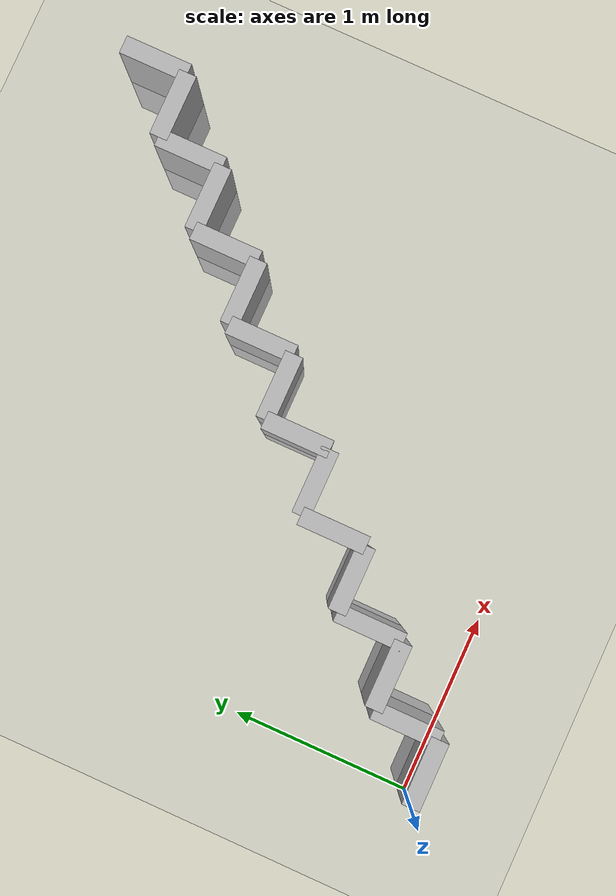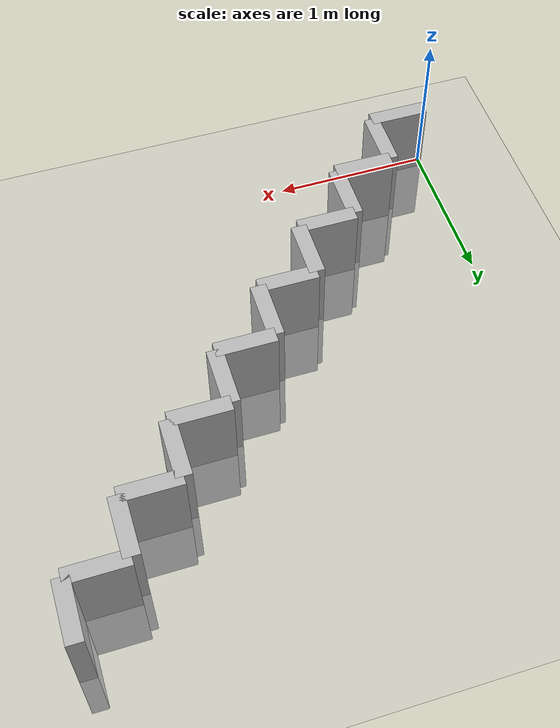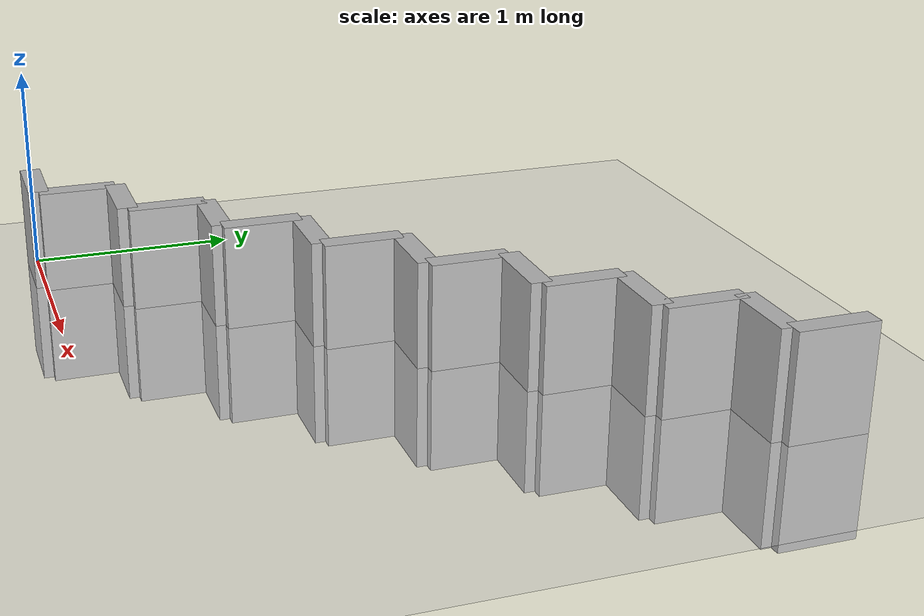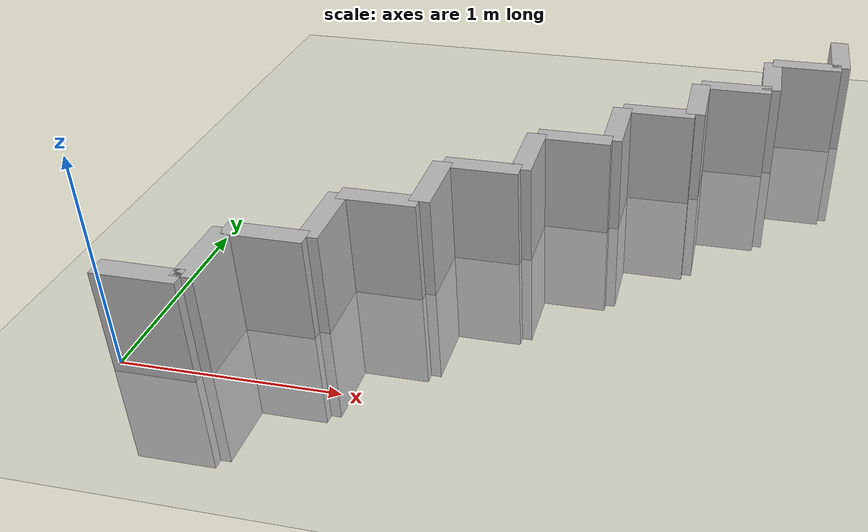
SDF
<?xml version="1.0" ?>
<sdf version="1.6">
  <world name="default">
    <include>
      <uri>model://ground_plane</uri>
    </include>
    <include>
      <uri>model://sun</uri>
    </include>

    <model name="wall_0">
      <static>true</static>
      <link name="link">
        <pose>0.1875 0 0 0 0 0</pose>
        <collision name="collision">
          <geometry>
            <box>
              <size>0.375 0.1 1.0</size>
            </box>
          </geometry>
        </collision>
        <visual name="visual">
          <geometry>
            <box>
              <size>0.375 0.1 1.0</size>
            </box>
          </geometry>
        </visual>
      </link>
    </model>

    <model name="wall_1">
      <static>true</static>
      <link name="link">
        <pose>0.375 0.1875 0 0 0 1.57</pose>
        <collision name="collision">
          <geometry>
            <box>
              <size>0.375 0.1 1.0</size>
            </box>
          </geometry>
        </collision>
        <visual name="visual">
          <geometry>
            <box>
              <size>0.375 0.1 1.0</size>
            </box>
          </geometry>
        </visual>
      </link>
    </model>

    <model name="wall_2">
      <static>true</static>
      <link name="link">
        <pose>0.5625 0.375 0 0 0 0</pose>
        <collision name="collision">
          <geometry>
            <box>
              <size>0.375 0.1 1.0</size>
            </box>
          </geometry>
        </collision>
        <visual name="visual">
          <geometry>
            <box>
              <size>0.375 0.1 1.0</size>
            </box>
          </geometry>
        </visual>
      </link>
    </model>

    <model name="wall_3">
      <static>true</static>
      <link name="link">
        <pose>0.75 0.5625 0 0 0 1.57</pose>
        <collision name="collision">
          <geometry>
            <box>
              <size>0.375 0.1 1.0</size>
            </box>
          </geometry>
        </collision>
        <visual name="visual">
          <geometry>
            <box>
              <size>0.375 0.1 1.0</size>
            </box>
          </geometry>
        </visual>
      </link>
    </model>

    <model name="wall_4">
      <static>true</static>
      <link name="link">
        <pose>0.9375 0.75 0 0 0 0</pose>
        <collision name="collision">
          <geometry>
            <box>
              <size>0.375 0.1 1.0</size>
            </box>
          </geometry>
        </collision>
        <visual name="visual">
          <geometry>
            <box>
              <size>0.375 0.1 1.0</size>
            </box>
          </geometry>
        </visual>
      </link>
    </model>

    <model name="wall_5">
      <static>true</static>
      <link name="link">
        <pose>1.125 0.9375 0 0 0 1.57</pose>
        <collision name="collision">
          <geometry>
            <box>
              <size>0.375 0.1 1.0</size>
            </box>
          </geometry>
        </collision>
        <visual name="visual">
          <geometry>
            <box>
              <size>0.375 0.1 1.0</size>
            </box>
          </geometry>
        </visual>
      </link>
    </model>

    <model name="wall_6">
      <static>true</static>
      <link name="link">
        <pose>1.3125 1.125 0 0 0 0</pose>
        <collision name="collision">
          <geometry>
            <box>
              <size>0.375 0.1 1.0</size>
            </box>
          </geometry>
        </collision>
        <visual name="visual">
          <geometry>
            <box>
              <size>0.375 0.1 1.0</size>
            </box>
          </geometry>
        </visual>
      </link>
    </model>

    <model name="wall_7">
      <static>true</static>
      <link name="link">
        <pose>1.5 1.3125 0 0 0 1.57</pose>
        <collision name="collision">
          <geometry>
            <box>
              <size>0.375 0.1 1.0</size>
            </box>
          </geometry>
        </collision>
        <visual name="visual">
          <geometry>
            <box>
              <size>0.375 0.1 1.0</size>
            </box>
          </geometry>
        </visual>
      </link>
    </model>

    <model name="wall_8">
      <static>true</static>
      <link name="link">
        <pose>1.6875 1.5 0 0 0 0</pose>
        <collision name="collision">
          <geometry>
            <box>
              <size>0.375 0.1 1.0</size>
            </box>
          </geometry>
        </collision>
        <visual name="visual">
          <geometry>
            <box>
              <size>0.375 0.1 1.0</size>
            </box>
          </geometry>
        </visual>
      </link>
    </model>

    <model name="wall_9">
      <static>true</static>
      <link name="link">
        <pose>1.875 1.6875 0 0 0 1.57</pose>
        <collision name="collision">
          <geometry>
            <box>
              <size>0.375 0.1 1.0</size>
            </box>
          </geometry>
        </collision>
        <visual name="visual">
          <geometry>
            <box>
              <size>0.375 0.1 1.0</size>
            </box>
          </geometry>
        </visual>
      </link>
    </model>

    <model name="wall_10">
      <static>true</static>
      <link name="link">
        <pose>2.0625 1.875 0 0 0 0</pose>
        <collision name="collision">
          <geometry>
            <box>
              <size>0.375 0.1 1.0</size>
            </box>
          </geometry>
        </collision>
        <visual name="visual">
          <geometry>
            <box>
              <size>0.375 0.1 1.0</size>
            </box>
          </geometry>
        </visual>
      </link>
    </model>

    <model name="wall_11">
      <static>true</static>
      <link name="link">
        <pose>2.25 2.0625 0 0 0 1.57</pose>
        <collision name="collision">
          <geometry>
            <box>
              <size>0.375 0.1 1.0</size>
            </box>
          </geometry>
        </collision>
        <visual name="visual">
          <geometry>
            <box>
              <size>0.375 0.1 1.0</size>
            </box>
          </geometry>
        </visual>
      </link>
    </model>

    <model name="wall_12">
      <static>true</static>
      <link name="link">
        <pose>2.4375 2.25 0 0 0 0</pose>
        <collision name="collision">
          <geometry>
            <box>
              <size>0.375 0.1 1.0</size>
            </box>
          </geometry>
        </collision>
        <visual name="visual">
          <geometry>
            <box>
              <size>0.375 0.1 1.0</size>
            </box>
          </geometry>
        </visual>
      </link>
    </model>

    <model name="wall_13">
      <static>true</static>
      <link name="link">
        <pose>2.625 2.4375 0 0 0 1.57</pose>
        <collision name="collision">
          <geometry>
            <box>
              <size>0.375 0.1 1.0</size>
            </box>
          </geometry>
        </collision>
        <visual name="visual">
          <geometry>
            <box>
              <size>0.375 0.1 1.0</size>
            </box>
          </geometry>
        </visual>
      </link>
    </model>

    <model name="wall_14">
      <static>true</static>
      <link name="link">
        <pose>2.8125 2.625 0 0 0 0</pose>
        <collision name="collision">
          <geometry>
            <box>
              <size>0.375 0.1 1.0</size>
            </box>
          </geometry>
        </collision>
        <visual name="visual">
          <geometry>
            <box>
              <size>0.375 0.1 1.0</size>
            </box>
          </geometry>
        </visual>
      </link>
    </model>

    <model name="wall_15">
      <static>true</static>
      <link name="link">
        <pose>3.0 2.8125 0 0 0 1.57</pose>
        <collision name="collision">
          <geometry>
            <box>
              <size>0.375 0.1 1.0</size>
            </box>
          </geometry>
        </collision>
        <visual name="visual">
          <geometry>
            <box>
              <size>0.375 0.1 1.0</size>
            </box>
          </geometry>
        </visual>
      </link>
    </model>

  </world>
</sdf>
